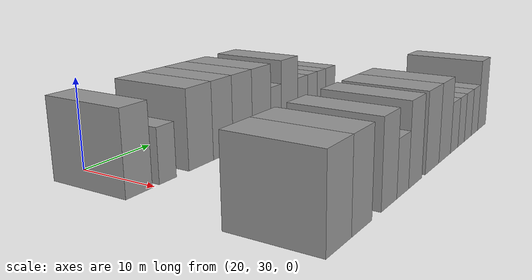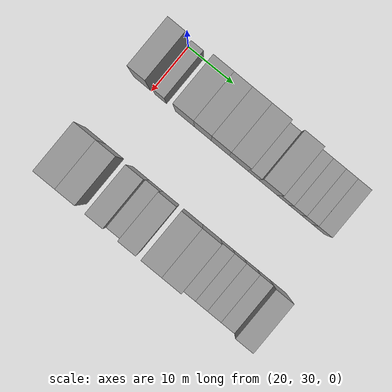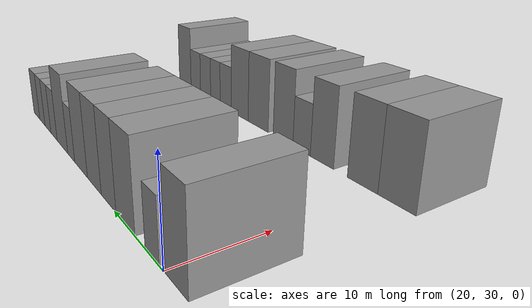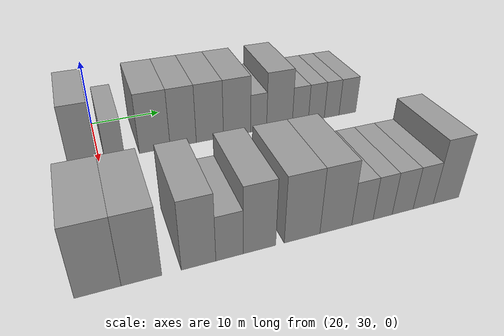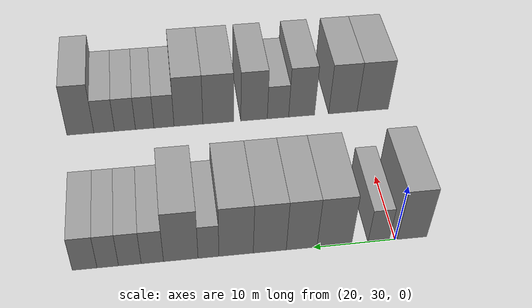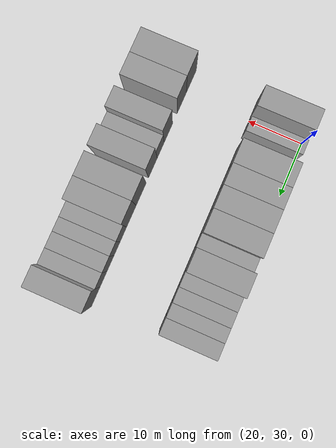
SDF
<sdf version="1.6">
 <world name="default">
  <model name="building_55">
   <static>1</static>
   <pose>25.0000 27.9131 0 0.000000 0.000000 0.000000</pose>
   <link name="link">
    <pose>0 0 4.50 0 0 0</pose>
    <collision name="collision"><geometry><box><size>10.0000 3.6527 9.0000</size></box></geometry></collision>
    <visual name="visual">
     <cast_shadows>0</cast_shadows>
     <geometry><box><size>10.0000 3.6527 9.0000</size></box></geometry>
     <material>
      <script>
       <uri>model://grey_wall/materials/scripts</uri>
       <uri>model://grey_wall/materials/textures</uri>
       <name>vrc/grey_wall</name>
      </script>
     </material>
    </visual>
   </link>
  </model>
  <model name="building_56">
   <static>1</static>
   <pose>25.0000 32.0451 0 0.000000 0.000000 0.000000</pose>
   <link name="link">
    <pose>0 0 3.00 0 0 0</pose>
    <collision name="collision"><geometry><box><size>10.0000 2.6112 6.0000</size></box></geometry></collision>
    <visual name="visual">
     <cast_shadows>0</cast_shadows>
     <geometry><box><size>10.0000 2.6112 6.0000</size></box></geometry>
     <material>
      <script>
       <uri>model://grey_wall/materials/scripts</uri>
       <uri>model://grey_wall/materials/textures</uri>
       <name>vrc/grey_wall</name>
      </script>
     </material>
    </visual>
   </link>
  </model>
  <model name="building_57">
   <static>1</static>
   <pose>25.0000 37.4714 0 0.000000 0.000000 0.000000</pose>
   <link name="link">
    <pose>0 0 4.50 0 0 0</pose>
    <collision name="collision"><geometry><box><size>10.0000 4.2415 9.0000</size></box></geometry></collision>
    <visual name="visual">
     <cast_shadows>0</cast_shadows>
     <geometry><box><size>10.0000 4.2415 9.0000</size></box></geometry>
     <material>
      <script>
       <uri>model://grey_wall/materials/scripts</uri>
       <uri>model://grey_wall/materials/textures</uri>
       <name>vrc/grey_wall</name>
      </script>
     </material>
    </visual>
   </link>
  </model>
  <model name="building_58">
   <static>1</static>
   <pose>25.0000 41.4529 0 0.000000 0.000000 0.000000</pose>
   <link name="link">
    <pose>0 0 4.50 0 0 0</pose>
    <collision name="collision"><geometry><box><size>10.0000 3.7214 9.0000</size></box></geometry></collision>
    <visual name="visual">
     <cast_shadows>0</cast_shadows>
     <geometry><box><size>10.0000 3.7214 9.0000</size></box></geometry>
     <material>
      <script>
       <uri>model://grey_wall/materials/scripts</uri>
       <uri>model://grey_wall/materials/textures</uri>
       <name>vrc/grey_wall</name>
      </script>
     </material>
    </visual>
   </link>
  </model>
  <model name="building_59">
   <static>1</static>
   <pose>25.0000 45.3034 0 0.000000 0.000000 0.000000</pose>
   <link name="link">
    <pose>0 0 4.50 0 0 0</pose>
    <collision name="collision"><geometry><box><size>10.0000 3.9796 9.0000</size></box></geometry></collision>
    <visual name="visual">
     <cast_shadows>0</cast_shadows>
     <geometry><box><size>10.0000 3.9796 9.0000</size></box></geometry>
     <material>
      <script>
       <uri>model://grey_wall/materials/scripts</uri>
       <uri>model://grey_wall/materials/textures</uri>
       <name>vrc/grey_wall</name>
      </script>
     </material>
    </visual>
   </link>
  </model>
  <model name="building_60">
   <static>1</static>
   <pose>25.0000 49.3481 0 0.000000 0.000000 0.000000</pose>
   <link name="link">
    <pose>0 0 4.50 0 0 0</pose>
    <collision name="collision"><geometry><box><size>10.0000 4.1098 9.0000</size></box></geometry></collision>
    <visual name="visual">
     <cast_shadows>0</cast_shadows>
     <geometry><box><size>10.0000 4.1098 9.0000</size></box></geometry>
     <material>
      <script>
       <uri>model://grey_wall/materials/scripts</uri>
       <uri>model://grey_wall/materials/textures</uri>
       <name>vrc/grey_wall</name>
      </script>
     </material>
    </visual>
   </link>
  </model>
  <model name="building_61">
   <static>1</static>
   <pose>25.0000 52.6448 0 0.000000 0.000000 0.000000</pose>
   <link name="link">
    <pose>0 0 3.00 0 0 0</pose>
    <collision name="collision"><geometry><box><size>10.0000 2.4836 6.0000</size></box></geometry></collision>
    <visual name="visual">
     <cast_shadows>0</cast_shadows>
     <geometry><box><size>10.0000 2.4836 6.0000</size></box></geometry>
     <material>
      <script>
       <uri>model://grey_wall/materials/scripts</uri>
       <uri>model://grey_wall/materials/textures</uri>
       <name>vrc/grey_wall</name>
      </script>
     </material>
    </visual>
   </link>
  </model>
  <model name="building_62">
   <static>1</static>
   <pose>25.0000 55.9288 0 0.000000 0.000000 0.000000</pose>
   <link name="link">
    <pose>0 0 4.50 0 0 0</pose>
    <collision name="collision"><geometry><box><size>10.0000 4.0844 9.0000</size></box></geometry></collision>
    <visual name="visual">
     <cast_shadows>0</cast_shadows>
     <geometry><box><size>10.0000 4.0844 9.0000</size></box></geometry>
     <material>
      <script>
       <uri>model://grey_wall/materials/scripts</uri>
       <uri>model://grey_wall/materials/textures</uri>
       <name>vrc/grey_wall</name>
      </script>
     </material>
    </visual>
   </link>
  </model>
  <model name="building_63">
   <static>1</static>
   <pose>25.0000 59.2837 0 0.000000 0.000000 0.000000</pose>
   <link name="link">
    <pose>0 0 3.00 0 0 0</pose>
    <collision name="collision"><geometry><box><size>10.0000 2.6255 6.0000</size></box></geometry></collision>
    <visual name="visual">
     <cast_shadows>0</cast_shadows>
     <geometry><box><size>10.0000 2.6255 6.0000</size></box></geometry>
     <material>
      <script>
       <uri>model://grey_wall/materials/scripts</uri>
       <uri>model://grey_wall/materials/textures</uri>
       <name>vrc/grey_wall</name>
      </script>
     </material>
    </visual>
   </link>
  </model>
  <model name="building_64">
   <static>1</static>
   <pose>25.0000 61.9280 0 0.000000 0.000000 0.000000</pose>
   <link name="link">
    <pose>0 0 3.00 0 0 0</pose>
    <collision name="collision"><geometry><box><size>10.0000 2.6632 6.0000</size></box></geometry></collision>
    <visual name="visual">
     <cast_shadows>0</cast_shadows>
     <geometry><box><size>10.0000 2.6632 6.0000</size></box></geometry>
     <material>
      <script>
       <uri>model://grey_wall/materials/scripts</uri>
       <uri>model://grey_wall/materials/textures</uri>
       <name>vrc/grey_wall</name>
      </script>
     </material>
    </visual>
   </link>
  </model>
  <model name="building_65">
   <static>1</static>
   <pose>25.0000 64.5091 0 0.000000 0.000000 0.000000</pose>
   <link name="link">
    <pose>0 0 3.00 0 0 0</pose>
    <collision name="collision"><geometry><box><size>10.0000 2.4990 6.0000</size></box></geometry></collision>
    <visual name="visual">
     <cast_shadows>0</cast_shadows>
     <geometry><box><size>10.0000 2.4990 6.0000</size></box></geometry>
     <material>
      <script>
       <uri>model://grey_wall/materials/scripts</uri>
       <uri>model://grey_wall/materials/textures</uri>
       <name>vrc/grey_wall</name>
      </script>
     </material>
    </visual>
   </link>
  </model>
  <model name="building_66">
   <static>1</static>
   <pose>25.0000 67.1995 0 0.000000 0.000000 0.000000</pose>
   <link name="link">
    <pose>0 0 3.00 0 0 0</pose>
    <collision name="collision"><geometry><box><size>10.0000 2.8817 6.0000</size></box></geometry></collision>
    <visual name="visual">
     <cast_shadows>0</cast_shadows>
     <geometry><box><size>10.0000 2.8817 6.0000</size></box></geometry>
     <material>
      <script>
       <uri>model://grey_wall/materials/scripts</uri>
       <uri>model://grey_wall/materials/textures</uri>
       <name>vrc/grey_wall</name>
      </script>
     </material>
    </visual>
   </link>
  </model>
  <model name="building_145">
   <static>1</static>
   <pose>47.0000 27.4790 0 0.000000 0.000000 0.000000</pose>
   <link name="link">
    <pose>0 0 4.50 0 0 0</pose>
    <collision name="collision"><geometry><box><size>10.0000 4.4701 9.0000</size></box></geometry></collision>
    <visual name="visual">
     <cast_shadows>0</cast_shadows>
     <geometry><box><size>10.0000 4.4701 9.0000</size></box></geometry>
     <material>
      <script>
       <uri>model://grey_wall/materials/scripts</uri>
       <uri>model://grey_wall/materials/textures</uri>
       <name>vrc/grey_wall</name>
      </script>
     </material>
    </visual>
   </link>
  </model>
  <model name="building_146">
   <static>1</static>
   <pose>47.0000 31.7321 0 0.000000 0.000000 0.000000</pose>
   <link name="link">
    <pose>0 0 4.50 0 0 0</pose>
    <collision name="collision"><geometry><box><size>10.0000 4.0360 9.0000</size></box></geometry></collision>
    <visual name="visual">
     <cast_shadows>0</cast_shadows>
     <geometry><box><size>10.0000 4.0360 9.0000</size></box></geometry>
     <material>
      <script>
       <uri>model://grey_wall/materials/scripts</uri>
       <uri>model://grey_wall/materials/textures</uri>
       <name>vrc/grey_wall</name>
      </script>
     </material>
    </visual>
   </link>
  </model>
  <model name="building_147">
   <static>1</static>
   <pose>47.0000 37.5798 0 0.000000 0.000000 0.000000</pose>
   <link name="link">
    <pose>0 0 4.50 0 0 0</pose>
    <collision name="collision"><geometry><box><size>10.0000 3.6594 9.0000</size></box></geometry></collision>
    <visual name="visual">
     <cast_shadows>0</cast_shadows>
     <geometry><box><size>10.0000 3.6594 9.0000</size></box></geometry>
     <material>
      <script>
       <uri>model://grey_wall/materials/scripts</uri>
       <uri>model://grey_wall/materials/textures</uri>
       <name>vrc/grey_wall</name>
      </script>
     </material>
    </visual>
   </link>
  </model>
  <model name="building_148">
   <static>1</static>
   <pose>47.0000 40.9084 0 0.000000 0.000000 0.000000</pose>
   <link name="link">
    <pose>0 0 3.00 0 0 0</pose>
    <collision name="collision"><geometry><box><size>10.0000 2.9980 6.0000</size></box></geometry></collision>
    <visual name="visual">
     <cast_shadows>0</cast_shadows>
     <geometry><box><size>10.0000 2.9980 6.0000</size></box></geometry>
     <material>
      <script>
       <uri>model://grey_wall/materials/scripts</uri>
       <uri>model://grey_wall/materials/textures</uri>
       <name>vrc/grey_wall</name>
      </script>
     </material>
    </visual>
   </link>
  </model>
  <model name="building_149">
   <static>1</static>
   <pose>47.0000 44.2568 0 0.000000 0.000000 0.000000</pose>
   <link name="link">
    <pose>0 0 4.50 0 0 0</pose>
    <collision name="collision"><geometry><box><size>10.0000 3.6987 9.0000</size></box></geometry></collision>
    <visual name="visual">
     <cast_shadows>0</cast_shadows>
     <geometry><box><size>10.0000 3.6987 9.0000</size></box></geometry>
     <material>
      <script>
       <uri>model://grey_wall/materials/scripts</uri>
       <uri>model://grey_wall/materials/textures</uri>
       <name>vrc/grey_wall</name>
      </script>
     </material>
    </visual>
   </link>
  </model>
  <model name="building_150">
   <static>1</static>
   <pose>47.0000 49.2364 0 0.000000 0.000000 0.000000</pose>
   <link name="link">
    <pose>0 0 4.50 0 0 0</pose>
    <collision name="collision"><geometry><box><size>10.0000 4.2606 9.0000</size></box></geometry></collision>
    <visual name="visual">
     <cast_shadows>0</cast_shadows>
     <geometry><box><size>10.0000 4.2606 9.0000</size></box></geometry>
     <material>
      <script>
       <uri>model://grey_wall/materials/scripts</uri>
       <uri>model://grey_wall/materials/textures</uri>
       <name>vrc/grey_wall</name>
      </script>
     </material>
    </visual>
   </link>
  </model>
  <model name="building_151">
   <static>1</static>
   <pose>47.0000 53.3556 0 0.000000 0.000000 0.000000</pose>
   <link name="link">
    <pose>0 0 4.50 0 0 0</pose>
    <collision name="collision"><geometry><box><size>10.0000 3.9778 9.0000</size></box></geometry></collision>
    <visual name="visual">
     <cast_shadows>0</cast_shadows>
     <geometry><box><size>10.0000 3.9778 9.0000</size></box></geometry>
     <material>
      <script>
       <uri>model://grey_wall/materials/scripts</uri>
       <uri>model://grey_wall/materials/textures</uri>
       <name>vrc/grey_wall</name>
      </script>
     </material>
    </visual>
   </link>
  </model>
  <model name="building_152">
   <static>1</static>
   <pose>47.0000 56.7275 0 0.000000 0.000000 0.000000</pose>
   <link name="link">
    <pose>0 0 3.00 0 0 0</pose>
    <collision name="collision"><geometry><box><size>10.0000 2.7658 6.0000</size></box></geometry></collision>
    <visual name="visual">
     <cast_shadows>0</cast_shadows>
     <geometry><box><size>10.0000 2.7658 6.0000</size></box></geometry>
     <material>
      <script>
       <uri>model://grey_wall/materials/scripts</uri>
       <uri>model://grey_wall/materials/textures</uri>
       <name>vrc/grey_wall</name>
      </script>
     </material>
    </visual>
   </link>
  </model>
  <model name="building_153">
   <static>1</static>
   <pose>47.0000 59.3707 0 0.000000 0.000000 0.000000</pose>
   <link name="link">
    <pose>0 0 3.00 0 0 0</pose>
    <collision name="collision"><geometry><box><size>10.0000 2.5206 6.0000</size></box></geometry></collision>
    <visual name="visual">
     <cast_shadows>0</cast_shadows>
     <geometry><box><size>10.0000 2.5206 6.0000</size></box></geometry>
     <material>
      <script>
       <uri>model://grey_wall/materials/scripts</uri>
       <uri>model://grey_wall/materials/textures</uri>
       <name>vrc/grey_wall</name>
      </script>
     </material>
    </visual>
   </link>
  </model>
  <model name="building_154">
   <static>1</static>
   <pose>47.0000 62.0552 0 0.000000 0.000000 0.000000</pose>
   <link name="link">
    <pose>0 0 3.00 0 0 0</pose>
    <collision name="collision"><geometry><box><size>10.0000 2.8485 6.0000</size></box></geometry></collision>
    <visual name="visual">
     <cast_shadows>0</cast_shadows>
     <geometry><box><size>10.0000 2.8485 6.0000</size></box></geometry>
     <material>
      <script>
       <uri>model://grey_wall/materials/scripts</uri>
       <uri>model://grey_wall/materials/textures</uri>
       <name>vrc/grey_wall</name>
      </script>
     </material>
    </visual>
   </link>
  </model>
  <model name="building_155">
   <static>1</static>
   <pose>47.0000 64.8820 0 0.000000 0.000000 0.000000</pose>
   <link name="link">
    <pose>0 0 3.00 0 0 0</pose>
    <collision name="collision"><geometry><box><size>10.0000 2.8050 6.0000</size></box></geometry></collision>
    <visual name="visual">
     <cast_shadows>0</cast_shadows>
     <geometry><box><size>10.0000 2.8050 6.0000</size></box></geometry>
     <material>
      <script>
       <uri>model://grey_wall/materials/scripts</uri>
       <uri>model://grey_wall/materials/textures</uri>
       <name>vrc/grey_wall</name>
      </script>
     </material>
    </visual>
   </link>
  </model>
  <model name="building_156">
   <static>1</static>
   <pose>47.0000 68.1056 0 0.000000 0.000000 0.000000</pose>
   <link name="link">
    <pose>0 0 4.50 0 0 0</pose>
    <collision name="collision"><geometry><box><size>10.0000 3.6422 9.0000</size></box></geometry></collision>
    <visual name="visual">
     <cast_shadows>0</cast_shadows>
     <geometry><box><size>10.0000 3.6422 9.0000</size></box></geometry>
     <material>
      <script>
       <uri>model://grey_wall/materials/scripts</uri>
       <uri>model://grey_wall/materials/textures</uri>
       <name>vrc/grey_wall</name>
      </script>
     </material>
    </visual>
   </link>
  </model>
 </world>
</sdf>
